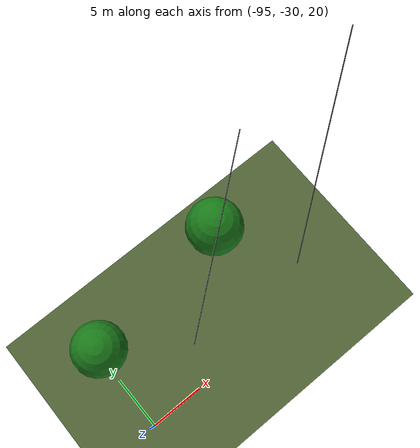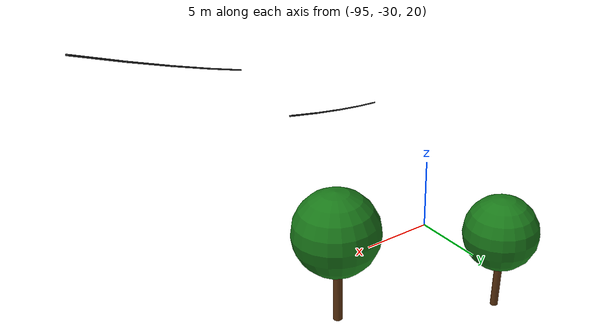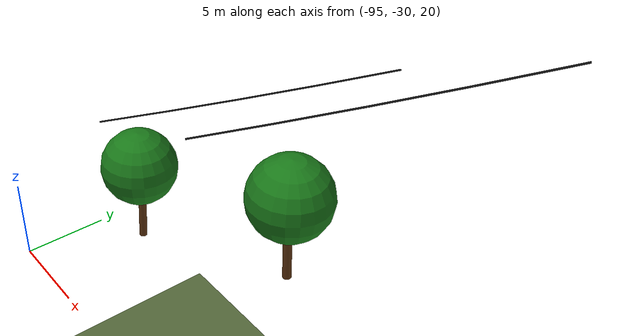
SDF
<sdf version="1.9">
 <world name="power_line_inspection">
  <model name="ground_plane">
   <static>true</static>
   <pose>0 0 -0.01 0 0 0</pose>
   <link name="link">
    <collision name="collision">
     <geometry><plane><normal>0 0 1</normal><size>600 600</size></plane></geometry>
     <surface><friction><ode><mu>1.0</mu><mu2>1.0</mu2></ode></friction></surface>
    </collision>
    <visual name="visual">
     <cast_shadows>false</cast_shadows>
     <geometry><plane><normal>0 0 1</normal><size>600 600</size></plane></geometry>
     <material>
      <ambient>0.28 0.35 0.18 1</ambient>
      <diffuse>0.32 0.40 0.22 1</diffuse>
      <specular>0.02 0.02 0.02 1</specular>
     </material>
    </visual>
   </link>
  </model>
  <model name="wire_L_s13">
   <static>true</static>
   <pose>-78.890 -26.901 36.232 -1.02478 0.82588 -0.48326</pose>
   <link name="link">
    <visual name="v">
     <geometry><cylinder><radius>0.04</radius><length>3.7711</length></cylinder></geometry>
     <material><ambient>0.08 0.08 0.08 1</ambient><diffuse>0.08 0.08 0.08 1</diffuse></material>
    </visual>
    <collision name="c">
     <geometry><cylinder><radius>0.04</radius><length>3.7711</length></cylinder></geometry>
    </collision>
   </link>
  </model>
  <model name="wire_L_s14">
   <static>true</static>
   <pose>-76.118 -24.716 37.581 -1.01025 0.82140 -0.47261</pose>
   <link name="link">
    <visual name="v">
     <geometry><cylinder><radius>0.04</radius><length>3.7867</length></cylinder></geometry>
     <material><ambient>0.08 0.08 0.08 1</ambient><diffuse>0.08 0.08 0.08 1</diffuse></material>
    </visual>
    <collision name="c">
     <geometry><cylinder><radius>0.04</radius><length>3.7867</length></cylinder></geometry>
    </collision>
   </link>
  </model>
  <model name="wire_L_s15">
   <static>true</static>
   <pose>-73.345 -22.531 38.974 -0.99598 0.81687 -0.46218</pose>
   <link name="link">
    <visual name="v">
     <geometry><cylinder><radius>0.04</radius><length>3.8028</length></cylinder></geometry>
     <material><ambient>0.08 0.08 0.08 1</ambient><diffuse>0.08 0.08 0.08 1</diffuse></material>
    </visual>
    <collision name="c">
     <geometry><cylinder><radius>0.04</radius><length>3.8028</length></cylinder></geometry>
    </collision>
   </link>
  </model>
  <model name="wire_L_s16">
   <static>true</static>
   <pose>-70.573 -20.346 40.412 -0.98198 0.81227 -0.45200</pose>
   <link name="link">
    <visual name="v">
     <geometry><cylinder><radius>0.04</radius><length>3.8194</length></cylinder></geometry>
     <material><ambient>0.08 0.08 0.08 1</ambient><diffuse>0.08 0.08 0.08 1</diffuse></material>
    </visual>
    <collision name="c">
     <geometry><cylinder><radius>0.04</radius><length>3.8194</length></cylinder></geometry>
    </collision>
   </link>
  </model>
  <model name="wire_R_s10">
   <static>true</static>
   <pose>-87.207 -26.455 32.446 -1.06992 0.83885 -0.51665</pose>
   <link name="link">
    <visual name="v">
     <geometry><cylinder><radius>0.04</radius><length>3.7268</length></cylinder></geometry>
     <material><ambient>0.08 0.08 0.08 1</ambient><diffuse>0.08 0.08 0.08 1</diffuse></material>
    </visual>
    <collision name="c">
     <geometry><cylinder><radius>0.04</radius><length>3.7268</length></cylinder></geometry>
    </collision>
   </link>
  </model>
  <model name="wire_R_s11">
   <static>true</static>
   <pose>-84.434 -24.270 33.664 -1.05461 0.83461 -0.50529</pose>
   <link name="link">
    <visual name="v">
     <geometry><cylinder><radius>0.04</radius><length>3.7411</length></cylinder></geometry>
     <material><ambient>0.08 0.08 0.08 1</ambient><diffuse>0.08 0.08 0.08 1</diffuse></material>
    </visual>
    <collision name="c">
     <geometry><cylinder><radius>0.04</radius><length>3.7411</length></cylinder></geometry>
    </collision>
   </link>
  </model>
  <model name="wire_R_s12">
   <static>true</static>
   <pose>-81.662 -22.085 34.926 -1.03956 0.83028 -0.49416</pose>
   <link name="link">
    <visual name="v">
     <geometry><cylinder><radius>0.04</radius><length>3.7559</length></cylinder></geometry>
     <material><ambient>0.08 0.08 0.08 1</ambient><diffuse>0.08 0.08 0.08 1</diffuse></material>
    </visual>
    <collision name="c">
     <geometry><cylinder><radius>0.04</radius><length>3.7559</length></cylinder></geometry>
    </collision>
   </link>
  </model>
  <model name="wire_R_s13">
   <static>true</static>
   <pose>-78.890 -19.901 36.232 -1.02478 0.82588 -0.48326</pose>
   <link name="link">
    <visual name="v">
     <geometry><cylinder><radius>0.04</radius><length>3.7711</length></cylinder></geometry>
     <material><ambient>0.08 0.08 0.08 1</ambient><diffuse>0.08 0.08 0.08 1</diffuse></material>
    </visual>
    <collision name="c">
     <geometry><cylinder><radius>0.04</radius><length>3.7711</length></cylinder></geometry>
    </collision>
   </link>
  </model>
  <model name="tree_10">
   <static>true</static>
   <pose>-81.33 -21.22 23.38 0 0 0.46</pose>
   <link name="link">
    <visual name="trunk">
     <pose>0 0 2.012 -0.000 -0.033 0</pose>
     <geometry><cylinder><radius>0.248</radius><length>4.025</length></cylinder></geometry>
     <material><ambient>0.32 0.18 0.05 1</ambient><diffuse>0.38 0.21 0.07 1</diffuse></material>
    </visual>
    <collision name="trunk_c">
     <pose>0 0 2.012 0 0 0</pose>
     <geometry><cylinder><radius>0.248</radius><length>4.025</length></cylinder></geometry>
    </collision>
    <visual name="canopy">
     <pose>0 0 5.312 0 0 0</pose>
     <geometry><sphere><radius>2.342</radius></sphere></geometry>
     <material><ambient>0.07 0.38 0.07 1</ambient><diffuse>0.10 0.48 0.10 1</diffuse></material>
    </visual>
    <collision name="canopy_c">
     <pose>0 0 5.312 0 0 0</pose>
     <geometry><sphere><radius>2.342</radius></sphere></geometry>
    </collision>
   </link>
  </model>
  <model name="tree_15">
   <static>true</static>
   <pose>-94.50 -22.19 17.81 0 0 0.51</pose>
   <link name="link">
    <visual name="trunk">
     <pose>0 0 2.101 -0.035 0.023 0</pose>
     <geometry><cylinder><radius>0.252</radius><length>4.202</length></cylinder></geometry>
     <material><ambient>0.32 0.18 0.05 1</ambient><diffuse>0.38 0.21 0.07 1</diffuse></material>
    </visual>
    <collision name="trunk_c">
     <pose>0 0 2.101 0 0 0</pose>
     <geometry><cylinder><radius>0.252</radius><length>4.202</length></cylinder></geometry>
    </collision>
    <visual name="canopy">
     <pose>0 0 5.547 0 0 0</pose>
     <geometry><sphere><radius>2.445</radius></sphere></geometry>
     <material><ambient>0.07 0.38 0.07 1</ambient><diffuse>0.10 0.48 0.10 1</diffuse></material>
    </visual>
    <collision name="canopy_c">
     <pose>0 0 5.547 0 0 0</pose>
     <geometry><sphere><radius>2.445</radius></sphere></geometry>
    </collision>
   </link>
  </model>
 </world>
</sdf>
